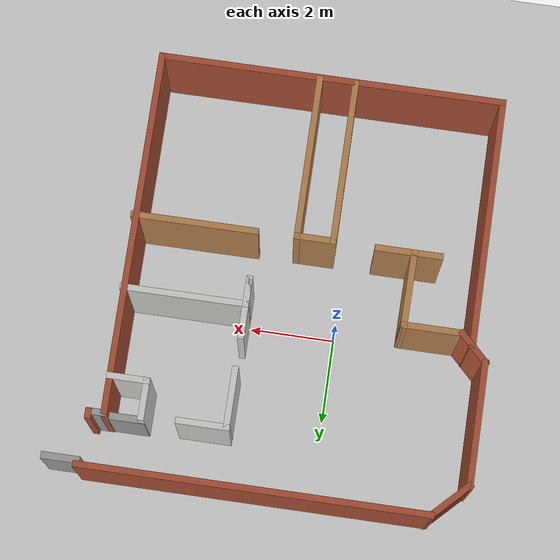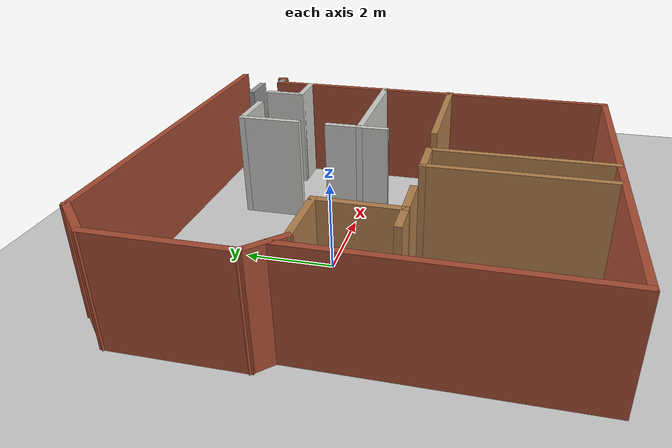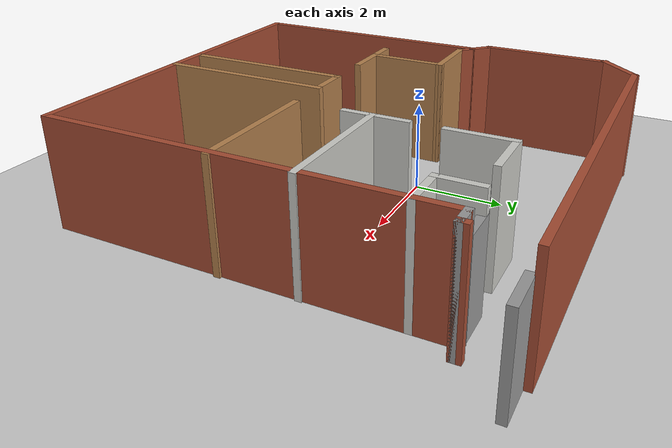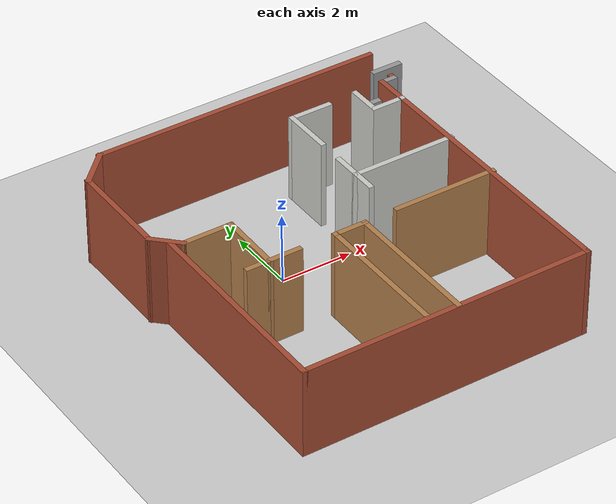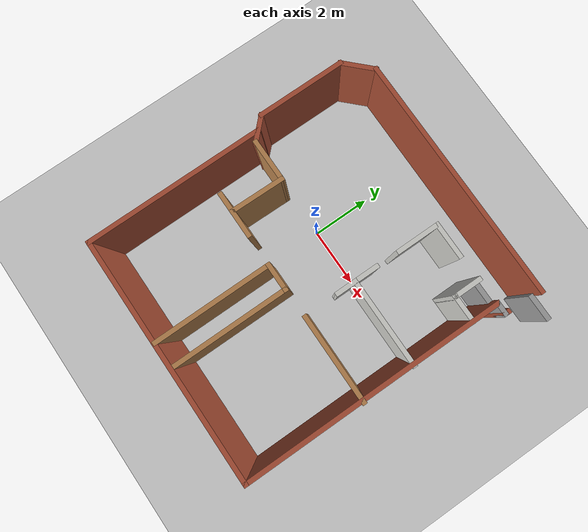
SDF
<sdf version="1.7">
 <world name="default">
  <light name="sun" type="directional">
   <pose>0 0 10 0 -0 0</pose>
   <diffuse>0.8 0.8 0.8 1</diffuse>
   <specular>0.2 0.2 0.2 1</specular>
   <attenuation>
    <range>1000</range>
    <constant>0.9</constant>
    <linear>0.01</linear>
    <quadratic>0.001</quadratic>
   </attenuation>
   <direction>-0.5 0.1 -0.9</direction>
   <spot><inner_angle>0</inner_angle><outer_angle>0</outer_angle><falloff>0</falloff></spot>
  </light>
  <model name="ground_plane">
   <static>1</static>
   <link name="link">
    <collision name="collision">
     <geometry><plane><normal>0 0 1</normal><size>100 100</size></plane></geometry>
     <surface><friction><ode><mu>100</mu><mu2>50</mu2></ode></friction></surface>
    </collision>
    <visual name="visual">
     <cast_shadows>0</cast_shadows>
     <geometry><plane><normal>0 0 1</normal><size>100 100</size></plane></geometry>
     <material>
      <script><uri>file://media/materials/scripts/gazebo.material</uri><name>Gazebo/Grey</name></script>
     </material>
    </visual>
   </link>
  </model>
  <gravity>0 0 -9.8</gravity>
  <magnetic_field>6e-06 2.3e-05 -4.2e-05</magnetic_field>
  <atmosphere type="adiabatic"/>
  <physics type="ode">
   <max_step_size>0.001</max_step_size>
   <real_time_factor>1</real_time_factor>
   <real_time_update_rate>1000</real_time_update_rate>
  </physics>
  <scene><ambient>0.4 0.4 0.4 1</ambient><background>0.7 0.7 0.7 1</background><shadows>1</shadows></scene>
  <audio><device>default</device></audio>
  <spherical_coordinates>
   <surface_model>EARTH_WGS84</surface_model>
   <latitude_deg>0</latitude_deg>
   <longitude_deg>0</longitude_deg>
   <elevation>0</elevation>
   <heading_deg>0</heading_deg>
  </spherical_coordinates>
  <model name="belmontGhar">
   <link name="Door_0">
    <pose>4.88717 4.75259 0 0 -0 0</pose>
    <visual name="Door_0_Visual">
     <pose>0 0 1 0 -0 0</pose>
     <geometry><box><size>0.9 0.17 2</size></box></geometry>
     <material>
      <script><uri>file://media/materials/scripts/gazebo.material</uri><name>Gazebo/Grey</name></script>
      <shader type="pixel"/>
     </material>
    </visual>
    <collision name="Door_0_Collision">
     <pose>0 0 1 0 -0 0</pose>
     <geometry><box><size>0.9 0.17 2</size></box></geometry>
     <surface>
      <friction>
       <ode><mu>1</mu><mu2>1</mu2><fdir1>0 0 0</fdir1><slip1>0</slip1><slip2>0</slip2></ode>
       <torsional>
        <coefficient>1</coefficient>
        <patch_radius>0</patch_radius>
        <surface_radius>0</surface_radius>
        <use_patch_radius>1</use_patch_radius>
        <ode><slip>0</slip></ode>
       </torsional>
      </friction>
      <bounce><restitution_coefficient>0</restitution_coefficient><threshold>1e+06</threshold></bounce>
      <contact>
       <collide_without_contact>0</collide_without_contact>
       <collide_without_contact_bitmask>1</collide_without_contact_bitmask>
       <collide_bitmask>1</collide_bitmask>
       <ode>
        <soft_cfm>0</soft_cfm>
        <soft_erp>0.2</soft_erp>
        <kp>1e+13</kp>
        <kd>1</kd>
        <max_vel>0.01</max_vel>
        <min_depth>0</min_depth>
       </ode>
       <bullet>
        <split_impulse>1</split_impulse>
        <split_impulse_penetration_threshold>-0.01</split_impulse_penetration_threshold>
        <soft_cfm>0</soft_cfm>
        <soft_erp>0.2</soft_erp>
        <kp>1e+13</kp>
        <kd>1</kd>
       </bullet>
      </contact>
     </surface>
    </collision>
   </link>
   <link name="Door_6">
    <pose>3.55796 3.64174 0 0 -0 0</pose>
    <visual name="Door_6_Visual">
     <pose>0 0 1 0 -0 0</pose>
     <geometry><box><size>0.9 0.17 2</size></box></geometry>
     <material>
      <script><uri>file://media/materials/scripts/gazebo.material</uri><name>Gazebo/Grey</name></script>
      <shader type="pixel"/>
     </material>
    </visual>
    <collision name="Door_6_Collision">
     <pose>0 0 1 0 -0 0</pose>
     <geometry><box><size>0.9 0.17 2</size></box></geometry>
     <surface>
      <friction>
       <ode><mu>1</mu><mu2>1</mu2><fdir1>0 0 0</fdir1><slip1>0</slip1><slip2>0</slip2></ode>
       <torsional>
        <coefficient>1</coefficient>
        <patch_radius>0</patch_radius>
        <surface_radius>0</surface_radius>
        <use_patch_radius>1</use_patch_radius>
        <ode><slip>0</slip></ode>
       </torsional>
      </friction>
      <bounce><restitution_coefficient>0</restitution_coefficient><threshold>1e+06</threshold></bounce>
      <contact>
       <collide_without_contact>0</collide_without_contact>
       <collide_without_contact_bitmask>1</collide_without_contact_bitmask>
       <collide_bitmask>1</collide_bitmask>
       <ode>
        <soft_cfm>0</soft_cfm>
        <soft_erp>0.2</soft_erp>
        <kp>1e+13</kp>
        <kd>1</kd>
        <max_vel>0.01</max_vel>
        <min_depth>0</min_depth>
       </ode>
       <bullet>
        <split_impulse>1</split_impulse>
        <split_impulse_penetration_threshold>-0.01</split_impulse_penetration_threshold>
        <soft_cfm>0</soft_cfm>
        <soft_erp>0.2</soft_erp>
        <kp>1e+13</kp>
        <kd>1</kd>
       </bullet>
      </contact>
     </surface>
    </collision>
   </link>
   <link name="Wall_0">
    <pose>0.404442 4.9024 0 0 -0 3.14159</pose>
    <visual name="Wall_0_Visual">
     <pose>0 0 1.25 0 -0 0</pose>
     <geometry><box><size>8.25 0.15 2.5</size></box></geometry>
     <material>
      <script><uri>file://media/materials/scripts/gazebo.material</uri><name>Gazebo/Bricks</name></script>
      <ambient>1 1 1 1</ambient>
      <shader type="pixel"/>
     </material>
     <meta><layer>0</layer></meta>
    </visual>
    <collision name="Wall_0_Collision">
     <pose>0 0 1.25 0 -0 0</pose>
     <geometry><box><size>8.25 0.15 2.5</size></box></geometry>
     <surface>
      <friction>
       <ode><mu>1</mu><mu2>1</mu2><fdir1>0 0 0</fdir1><slip1>0</slip1><slip2>0</slip2></ode>
       <torsional>
        <coefficient>1</coefficient>
        <patch_radius>0</patch_radius>
        <surface_radius>0</surface_radius>
        <use_patch_radius>1</use_patch_radius>
        <ode><slip>0</slip></ode>
       </torsional>
      </friction>
      <bounce><restitution_coefficient>0</restitution_coefficient><threshold>1e+06</threshold></bounce>
      <contact>
       <collide_without_contact>0</collide_without_contact>
       <collide_without_contact_bitmask>1</collide_without_contact_bitmask>
       <collide_bitmask>1</collide_bitmask>
       <ode>
        <soft_cfm>0</soft_cfm>
        <soft_erp>0.2</soft_erp>
        <kp>1e+13</kp>
        <kd>1</kd>
        <max_vel>0.01</max_vel>
        <min_depth>0</min_depth>
       </ode>
       <bullet>
        <split_impulse>1</split_impulse>
        <split_impulse_penetration_threshold>-0.01</split_impulse_penetration_threshold>
        <soft_cfm>0</soft_cfm>
        <soft_erp>0.2</soft_erp>
        <kp>1e+13</kp>
        <kd>1</kd>
       </bullet>
      </contact>
     </surface>
    </collision>
   </link>
   <link name="Wall_1">
    <pose>-4.03447 4.5135 0 0 0 -2.35619</pose>
    <visual name="Wall_1_Visual">
     <pose>0 0 1.25 0 -0 0</pose>
     <geometry><box><size>1.25 0.15 2.5</size></box></geometry>
     <material>
      <script><uri>file://media/materials/scripts/gazebo.material</uri><name>Gazebo/Bricks</name></script>
      <ambient>1 1 1 1</ambient>
      <shader type="pixel"/>
     </material>
     <meta><layer>0</layer></meta>
    </visual>
    <collision name="Wall_1_Collision">
     <pose>0 0 1.25 0 -0 0</pose>
     <geometry><box><size>1.25 0.15 2.5</size></box></geometry>
     <surface>
      <friction>
       <ode><mu>1</mu><mu2>1</mu2><fdir1>0 0 0</fdir1><slip1>0</slip1><slip2>0</slip2></ode>
       <torsional>
        <coefficient>1</coefficient>
        <patch_radius>0</patch_radius>
        <surface_radius>0</surface_radius>
        <use_patch_radius>1</use_patch_radius>
        <ode><slip>0</slip></ode>
       </torsional>
      </friction>
      <bounce><restitution_coefficient>0</restitution_coefficient><threshold>1e+06</threshold></bounce>
      <contact>
       <collide_without_contact>0</collide_without_contact>
       <collide_without_contact_bitmask>1</collide_without_contact_bitmask>
       <collide_bitmask>1</collide_bitmask>
       <ode>
        <soft_cfm>0</soft_cfm>
        <soft_erp>0.2</soft_erp>
        <kp>1e+13</kp>
        <kd>1</kd>
        <max_vel>0.01</max_vel>
        <min_depth>0</min_depth>
       </ode>
       <bullet>
        <split_impulse>1</split_impulse>
        <split_impulse_penetration_threshold>-0.01</split_impulse_penetration_threshold>
        <soft_cfm>0</soft_cfm>
        <soft_erp>0.2</soft_erp>
        <kp>1e+13</kp>
        <kd>1</kd>
       </bullet>
      </contact>
     </surface>
    </collision>
   </link>
   <link name="Wall_13">
    <pose>-4.08757 -2.00847 0 0 0 -1.5708</pose>
    <visual name="Wall_13_Visual">
     <pose>0 0 1.25 0 -0 0</pose>
     <geometry><box><size>6 0.15 2.5</size></box></geometry>
     <material>
      <script><uri>file://media/materials/scripts/gazebo.material</uri><name>Gazebo/Bricks</name></script>
      <ambient>1 1 1 1</ambient>
      <shader type="pixel"/>
     </material>
     <meta><layer>0</layer></meta>
    </visual>
    <collision name="Wall_13_Collision">
     <pose>0 0 1.25 0 -0 0</pose>
     <geometry><box><size>6 0.15 2.5</size></box></geometry>
     <surface>
      <friction>
       <ode><mu>1</mu><mu2>1</mu2><fdir1>0 0 0</fdir1><slip1>0</slip1><slip2>0</slip2></ode>
       <torsional>
        <coefficient>1</coefficient>
        <patch_radius>0</patch_radius>
        <surface_radius>0</surface_radius>
        <use_patch_radius>1</use_patch_radius>
        <ode><slip>0</slip></ode>
       </torsional>
      </friction>
      <bounce><restitution_coefficient>0</restitution_coefficient><threshold>1e+06</threshold></bounce>
      <contact>
       <collide_without_contact>0</collide_without_contact>
       <collide_without_contact_bitmask>1</collide_without_contact_bitmask>
       <collide_bitmask>1</collide_bitmask>
       <ode>
        <soft_cfm>0</soft_cfm>
        <soft_erp>0.2</soft_erp>
        <kp>1e+13</kp>
        <kd>1</kd>
        <max_vel>0.01</max_vel>
        <min_depth>0</min_depth>
       </ode>
       <bullet>
        <split_impulse>1</split_impulse>
        <split_impulse_penetration_threshold>-0.01</split_impulse_penetration_threshold>
        <soft_cfm>0</soft_cfm>
        <soft_erp>0.2</soft_erp>
        <kp>1e+13</kp>
        <kd>1</kd>
       </bullet>
      </contact>
     </surface>
    </collision>
   </link>
   <link name="Wall_14">
    <pose>-0.037571 -4.93347 0 0 -0 0</pose>
    <visual name="Wall_14_Visual">
     <pose>0 0 1.25 0 -0 0</pose>
     <geometry><box><size>8.25 0.15 2.5</size></box></geometry>
     <material>
      <script><uri>file://media/materials/scripts/gazebo.material</uri><name>Gazebo/Bricks</name></script>
      <ambient>1 1 1 1</ambient>
      <shader type="pixel"/>
     </material>
     <meta><layer>0</layer></meta>
    </visual>
    <collision name="Wall_14_Collision">
     <pose>0 0 1.25 0 -0 0</pose>
     <geometry><box><size>8.25 0.15 2.5</size></box></geometry>
     <surface>
      <friction>
       <ode><mu>1</mu><mu2>1</mu2><fdir1>0 0 0</fdir1><slip1>0</slip1><slip2>0</slip2></ode>
       <torsional>
        <coefficient>1</coefficient>
        <patch_radius>0</patch_radius>
        <surface_radius>0</surface_radius>
        <use_patch_radius>1</use_patch_radius>
        <ode><slip>0</slip></ode>
       </torsional>
      </friction>
      <bounce><restitution_coefficient>0</restitution_coefficient><threshold>1e+06</threshold></bounce>
      <contact>
       <collide_without_contact>0</collide_without_contact>
       <collide_without_contact_bitmask>1</collide_without_contact_bitmask>
       <collide_bitmask>1</collide_bitmask>
       <ode>
        <soft_cfm>0</soft_cfm>
        <soft_erp>0.2</soft_erp>
        <kp>1e+13</kp>
        <kd>1</kd>
        <max_vel>0.01</max_vel>
        <min_depth>0</min_depth>
       </ode>
       <bullet>
        <split_impulse>1</split_impulse>
        <split_impulse_penetration_threshold>-0.01</split_impulse_penetration_threshold>
        <soft_cfm>0</soft_cfm>
        <soft_erp>0.2</soft_erp>
        <kp>1e+13</kp>
        <kd>1</kd>
       </bullet>
      </contact>
     </surface>
    </collision>
   </link>
   <link name="Wall_15">
    <pose>4.01243 -0.63347 0 0 -0 1.5708</pose>
    <visual name="Wall_15_Visual">
     <pose>0 0 1.25 0 -0 0</pose>
     <geometry><box><size>8.75 0.15 2.5</size></box></geometry>
     <material>
      <script><uri>file://media/materials/scripts/gazebo.material</uri><name>Gazebo/Bricks</name></script>
      <ambient>1 1 1 1</ambient>
      <shader type="pixel"/>
     </material>
     <meta><layer>0</layer></meta>
    </visual>
    <collision name="Wall_15_Collision">
     <pose>0 0 1.25 0 -0 0</pose>
     <geometry><box><size>8.75 0.15 2.5</size></box></geometry>
     <surface>
      <friction>
       <ode><mu>1</mu><mu2>1</mu2><fdir1>0 0 0</fdir1><slip1>0</slip1><slip2>0</slip2></ode>
       <torsional>
        <coefficient>1</coefficient>
        <patch_radius>0</patch_radius>
        <surface_radius>0</surface_radius>
        <use_patch_radius>1</use_patch_radius>
        <ode><slip>0</slip></ode>
       </torsional>
      </friction>
      <bounce><restitution_coefficient>0</restitution_coefficient><threshold>1e+06</threshold></bounce>
      <contact>
       <collide_without_contact>0</collide_without_contact>
       <collide_without_contact_bitmask>1</collide_without_contact_bitmask>
       <collide_bitmask>1</collide_bitmask>
       <ode>
        <soft_cfm>0</soft_cfm>
        <soft_erp>0.2</soft_erp>
        <kp>1e+13</kp>
        <kd>1</kd>
        <max_vel>0.01</max_vel>
        <min_depth>0</min_depth>
       </ode>
       <bullet>
        <split_impulse>1</split_impulse>
        <split_impulse_penetration_threshold>-0.01</split_impulse_penetration_threshold>
        <soft_cfm>0</soft_cfm>
        <soft_erp>0.2</soft_erp>
        <kp>1e+13</kp>
        <kd>1</kd>
       </bullet>
      </contact>
     </surface>
    </collision>
   </link>
   <link name="Wall_16">
    <pose>4.18743 3.66653 0 0 -0 0</pose>
    <visual name="Wall_16_Visual">
     <pose>0 0 1.25 0 -0 0</pose>
     <geometry><box><size>0.5 0.15 2.5</size></box></geometry>
     <material>
      <script><uri>file://media/materials/scripts/gazebo.material</uri><name>Gazebo/Grey</name></script>
      <ambient>1 1 1 1</ambient>
      <shader type="pixel"/>
     </material>
     <meta><layer>0</layer></meta>
    </visual>
    <collision name="Wall_16_Collision">
     <pose>0 0 1.25 0 -0 0</pose>
     <geometry><box><size>0.5 0.15 2.5</size></box></geometry>
     <surface>
      <friction>
       <ode><mu>1</mu><mu2>1</mu2><fdir1>0 0 0</fdir1><slip1>0</slip1><slip2>0</slip2></ode>
       <torsional>
        <coefficient>1</coefficient>
        <patch_radius>0</patch_radius>
        <surface_radius>0</surface_radius>
        <use_patch_radius>1</use_patch_radius>
        <ode><slip>0</slip></ode>
       </torsional>
      </friction>
      <bounce><restitution_coefficient>0</restitution_coefficient><threshold>1e+06</threshold></bounce>
      <contact>
       <collide_without_contact>0</collide_without_contact>
       <collide_without_contact_bitmask>1</collide_without_contact_bitmask>
       <collide_bitmask>1</collide_bitmask>
       <ode>
        <soft_cfm>0</soft_cfm>
        <soft_erp>0.2</soft_erp>
        <kp>1e+13</kp>
        <kd>1</kd>
        <max_vel>0.01</max_vel>
        <min_depth>0</min_depth>
       </ode>
       <bullet>
        <split_impulse>1</split_impulse>
        <split_impulse_penetration_threshold>-0.01</split_impulse_penetration_threshold>
        <soft_cfm>0</soft_cfm>
        <soft_erp>0.2</soft_erp>
        <kp>1e+13</kp>
        <kd>1</kd>
       </bullet>
      </contact>
     </surface>
    </collision>
   </link>
   <link name="Wall_17">
    <pose>4.36243 3.71653 0 0 -0 1.5708</pose>
    <visual name="Wall_17_Visual">
     <pose>0 0 1.25 0 -0 0</pose>
     <geometry><box><size>0.25 0.15 2.5</size></box></geometry>
     <material>
      <script><uri>file://media/materials/scripts/gazebo.material</uri><name>Gazebo/Bricks</name></script>
      <ambient>1 1 1 1</ambient>
      <shader type="pixel"/>
     </material>
     <meta><layer>0</layer></meta>
    </visual>
    <collision name="Wall_17_Collision">
     <pose>0 0 1.25 0 -0 0</pose>
     <geometry><box><size>0.25 0.15 2.5</size></box></geometry>
     <surface>
      <friction>
       <ode><mu>1</mu><mu2>1</mu2><fdir1>0 0 0</fdir1><slip1>0</slip1><slip2>0</slip2></ode>
       <torsional>
        <coefficient>1</coefficient>
        <patch_radius>0</patch_radius>
        <surface_radius>0</surface_radius>
        <use_patch_radius>1</use_patch_radius>
        <ode><slip>0</slip></ode>
       </torsional>
      </friction>
      <bounce><restitution_coefficient>0</restitution_coefficient><threshold>1e+06</threshold></bounce>
      <contact>
       <collide_without_contact>0</collide_without_contact>
       <collide_without_contact_bitmask>1</collide_without_contact_bitmask>
       <collide_bitmask>1</collide_bitmask>
       <ode>
        <soft_cfm>0</soft_cfm>
        <soft_erp>0.2</soft_erp>
        <kp>1e+13</kp>
        <kd>1</kd>
        <max_vel>0.01</max_vel>
        <min_depth>0</min_depth>
       </ode>
       <bullet>
        <split_impulse>1</split_impulse>
        <split_impulse_penetration_threshold>-0.01</split_impulse_penetration_threshold>
        <soft_cfm>0</soft_cfm>
        <soft_erp>0.2</soft_erp>
        <kp>1e+13</kp>
        <kd>1</kd>
       </bullet>
      </contact>
     </surface>
    </collision>
   </link>
   <link name="Wall_19">
    <pose>2.64183 -1.03065 0 0 -0 3.14159</pose>
    <visual name="Wall_19_Visual">
     <pose>0 0 1.25 0 -0 0</pose>
     <geometry><box><size>3 0.15 2.5</size></box></geometry>
     <material>
      <script><uri>file://media/materials/scripts/gazebo.material</uri><name>Gazebo/Wood</name></script>
      <ambient>1 1 1 1</ambient>
      <shader type="pixel"/>
     </material>
     <meta><layer>0</layer></meta>
    </visual>
    <collision name="Wall_19_Collision">
     <pose>0 0 1.25 0 -0 0</pose>
     <geometry><box><size>3 0.15 2.5</size></box></geometry>
     <surface>
      <friction>
       <ode><mu>1</mu><mu2>1</mu2><fdir1>0 0 0</fdir1><slip1>0</slip1><slip2>0</slip2></ode>
       <torsional>
        <coefficient>1</coefficient>
        <patch_radius>0</patch_radius>
        <surface_radius>0</surface_radius>
        <use_patch_radius>1</use_patch_radius>
        <ode><slip>0</slip></ode>
       </torsional>
      </friction>
      <bounce><restitution_coefficient>0</restitution_coefficient><threshold>1e+06</threshold></bounce>
      <contact>
       <collide_without_contact>0</collide_without_contact>
       <collide_without_contact_bitmask>1</collide_without_contact_bitmask>
       <collide_bitmask>1</collide_bitmask>
       <ode>
        <soft_cfm>0</soft_cfm>
        <soft_erp>0.2</soft_erp>
        <kp>1e+13</kp>
        <kd>1</kd>
        <max_vel>0.01</max_vel>
        <min_depth>0</min_depth>
       </ode>
       <bullet>
        <split_impulse>1</split_impulse>
        <split_impulse_penetration_threshold>-0.01</split_impulse_penetration_threshold>
        <soft_cfm>0</soft_cfm>
        <soft_erp>0.2</soft_erp>
        <kp>1e+13</kp>
        <kd>1</kd>
       </bullet>
      </contact>
     </surface>
    </collision>
   </link>
   <link name="Wall_2">
    <pose>-4.42338 2.69959 0 0 0 -1.5708</pose>
    <visual name="Wall_2_Visual">
     <pose>0 0 1.25 0 -0 0</pose>
     <geometry><box><size>3 0.15 2.5</size></box></geometry>
     <material>
      <script><uri>file://media/materials/scripts/gazebo.material</uri><name>Gazebo/Bricks</name></script>
      <ambient>1 1 1 1</ambient>
      <shader type="pixel"/>
     </material>
     <meta><layer>0</layer></meta>
    </visual>
    <collision name="Wall_2_Collision">
     <pose>0 0 1.25 0 -0 0</pose>
     <geometry><box><size>3 0.15 2.5</size></box></geometry>
     <surface>
      <friction>
       <ode><mu>1</mu><mu2>1</mu2><fdir1>0 0 0</fdir1><slip1>0</slip1><slip2>0</slip2></ode>
       <torsional>
        <coefficient>1</coefficient>
        <patch_radius>0</patch_radius>
        <surface_radius>0</surface_radius>
        <use_patch_radius>1</use_patch_radius>
        <ode><slip>0</slip></ode>
       </torsional>
      </friction>
      <bounce><restitution_coefficient>0</restitution_coefficient><threshold>1e+06</threshold></bounce>
      <contact>
       <collide_without_contact>0</collide_without_contact>
       <collide_without_contact_bitmask>1</collide_without_contact_bitmask>
       <collide_bitmask>1</collide_bitmask>
       <ode>
        <soft_cfm>0</soft_cfm>
        <soft_erp>0.2</soft_erp>
        <kp>1e+13</kp>
        <kd>1</kd>
        <max_vel>0.01</max_vel>
        <min_depth>0</min_depth>
       </ode>
       <bullet>
        <split_impulse>1</split_impulse>
        <split_impulse_penetration_threshold>-0.01</split_impulse_penetration_threshold>
        <soft_cfm>0</soft_cfm>
        <soft_erp>0.2</soft_erp>
        <kp>1e+13</kp>
        <kd>1</kd>
       </bullet>
      </contact>
     </surface>
    </collision>
   </link>
   <link name="Wall_21">
    <pose>-0.174717 -1.05378 0 0 -0 3.14159</pose>
    <visual name="Wall_21_Visual">
     <pose>0 0 1.25 0 -0 0</pose>
     <geometry><box><size>1 0.15 2.5</size></box></geometry>
     <material>
      <script><uri>file://media/materials/scripts/gazebo.material</uri><name>Gazebo/Wood</name></script>
      <ambient>1 1 1 1</ambient>
      <shader type="pixel"/>
     </material>
     <meta><layer>0</layer></meta>
    </visual>
    <collision name="Wall_21_Collision">
     <pose>0 0 1.25 0 -0 0</pose>
     <geometry><box><size>1 0.15 2.5</size></box></geometry>
     <surface>
      <friction>
       <ode><mu>1</mu><mu2>1</mu2><fdir1>0 0 0</fdir1><slip1>0</slip1><slip2>0</slip2></ode>
       <torsional>
        <coefficient>1</coefficient>
        <patch_radius>0</patch_radius>
        <surface_radius>0</surface_radius>
        <use_patch_radius>1</use_patch_radius>
        <ode><slip>0</slip></ode>
       </torsional>
      </friction>
      <bounce><restitution_coefficient>0</restitution_coefficient><threshold>1e+06</threshold></bounce>
      <contact>
       <collide_without_contact>0</collide_without_contact>
       <collide_without_contact_bitmask>1</collide_without_contact_bitmask>
       <collide_bitmask>1</collide_bitmask>
       <ode>
        <soft_cfm>0</soft_cfm>
        <soft_erp>0.2</soft_erp>
        <kp>1e+13</kp>
        <kd>1</kd>
        <max_vel>0.01</max_vel>
        <min_depth>0</min_depth>
       </ode>
       <bullet>
        <split_impulse>1</split_impulse>
        <split_impulse_penetration_threshold>-0.01</split_impulse_penetration_threshold>
        <soft_cfm>0</soft_cfm>
        <soft_erp>0.2</soft_erp>
        <kp>1e+13</kp>
        <kd>1</kd>
       </bullet>
      </contact>
     </surface>
    </collision>
   </link>
   <link name="Wall_23">
    <pose>0.250283 -2.97878 0 0 0 -1.5708</pose>
    <visual name="Wall_23_Visual">
     <pose>0 0 1.25 0 -0 0</pose>
     <geometry><box><size>4 0.15 2.5</size></box></geometry>
     <material>
      <script><uri>file://media/materials/scripts/gazebo.material</uri><name>Gazebo/Wood</name></script>
      <ambient>1 1 1 1</ambient>
      <shader type="pixel"/>
     </material>
     <meta><layer>0</layer></meta>
    </visual>
    <collision name="Wall_23_Collision">
     <pose>0 0 1.25 0 -0 0</pose>
     <geometry><box><size>4 0.15 2.5</size></box></geometry>
     <surface>
      <friction>
       <ode><mu>1</mu><mu2>1</mu2><fdir1>0 0 0</fdir1><slip1>0</slip1><slip2>0</slip2></ode>
       <torsional>
        <coefficient>1</coefficient>
        <patch_radius>0</patch_radius>
        <surface_radius>0</surface_radius>
        <use_patch_radius>1</use_patch_radius>
        <ode><slip>0</slip></ode>
       </torsional>
      </friction>
      <bounce><restitution_coefficient>0</restitution_coefficient><threshold>1e+06</threshold></bounce>
      <contact>
       <collide_without_contact>0</collide_without_contact>
       <collide_without_contact_bitmask>1</collide_without_contact_bitmask>
       <collide_bitmask>1</collide_bitmask>
       <ode>
        <soft_cfm>0</soft_cfm>
        <soft_erp>0.2</soft_erp>
        <kp>1e+13</kp>
        <kd>1</kd>
        <max_vel>0.01</max_vel>
        <min_depth>0</min_depth>
       </ode>
       <bullet>
        <split_impulse>1</split_impulse>
        <split_impulse_penetration_threshold>-0.01</split_impulse_penetration_threshold>
        <soft_cfm>0</soft_cfm>
        <soft_erp>0.2</soft_erp>
        <kp>1e+13</kp>
        <kd>1</kd>
       </bullet>
      </contact>
     </surface>
    </collision>
   </link>
   <link name="Wall_25">
    <pose>-0.599717 -2.97878 0 0 0 -1.5708</pose>
    <visual name="Wall_25_Visual">
     <pose>0 0 1.25 0 -0 0</pose>
     <geometry><box><size>4 0.15 2.5</size></box></geometry>
     <material>
      <script><uri>file://media/materials/scripts/gazebo.material</uri><name>Gazebo/Wood</name></script>
      <ambient>1 1 1 1</ambient>
      <shader type="pixel"/>
     </material>
     <meta><layer>0</layer></meta>
    </visual>
    <collision name="Wall_25_Collision">
     <pose>0 0 1.25 0 -0 0</pose>
     <geometry><box><size>4 0.15 2.5</size></box></geometry>
     <surface>
      <friction>
       <ode><mu>1</mu><mu2>1</mu2><fdir1>0 0 0</fdir1><slip1>0</slip1><slip2>0</slip2></ode>
       <torsional>
        <coefficient>1</coefficient>
        <patch_radius>0</patch_radius>
        <surface_radius>0</surface_radius>
        <use_patch_radius>1</use_patch_radius>
        <ode><slip>0</slip></ode>
       </torsional>
      </friction>
      <bounce><restitution_coefficient>0</restitution_coefficient><threshold>1e+06</threshold></bounce>
      <contact>
       <collide_without_contact>0</collide_without_contact>
       <collide_without_contact_bitmask>1</collide_without_contact_bitmask>
       <collide_bitmask>1</collide_bitmask>
       <ode>
        <soft_cfm>0</soft_cfm>
        <soft_erp>0.2</soft_erp>
        <kp>1e+13</kp>
        <kd>1</kd>
        <max_vel>0.01</max_vel>
        <min_depth>0</min_depth>
       </ode>
       <bullet>
        <split_impulse>1</split_impulse>
        <split_impulse_penetration_threshold>-0.01</split_impulse_penetration_threshold>
        <soft_cfm>0</soft_cfm>
        <soft_erp>0.2</soft_erp>
        <kp>1e+13</kp>
        <kd>1</kd>
       </bullet>
      </contact>
     </surface>
    </collision>
   </link>
   <link name="Wall_27">
    <pose>2.6187 0.70415 0 0 -0 3.14159</pose>
    <visual name="Wall_27_Visual">
     <pose>0 0 1.25 0 -0 0</pose>
     <geometry><box><size>3 0.15 2.5</size></box></geometry>
     <material>
      <script><uri>file://media/materials/scripts/gazebo.material</uri><name>Gazebo/CeilingTiled</name></script>
      <ambient>1 1 1 1</ambient>
      <shader type="pixel"/>
     </material>
     <meta><layer>0</layer></meta>
    </visual>
    <collision name="Wall_27_Collision">
     <pose>0 0 1.25 0 -0 0</pose>
     <geometry><box><size>3 0.15 2.5</size></box></geometry>
     <surface>
      <friction>
       <ode><mu>1</mu><mu2>1</mu2><fdir1>0 0 0</fdir1><slip1>0</slip1><slip2>0</slip2></ode>
       <torsional>
        <coefficient>1</coefficient>
        <patch_radius>0</patch_radius>
        <surface_radius>0</surface_radius>
        <use_patch_radius>1</use_patch_radius>
        <ode><slip>0</slip></ode>
       </torsional>
      </friction>
      <bounce><restitution_coefficient>0</restitution_coefficient><threshold>1e+06</threshold></bounce>
      <contact>
       <collide_without_contact>0</collide_without_contact>
       <collide_without_contact_bitmask>1</collide_without_contact_bitmask>
       <collide_bitmask>1</collide_bitmask>
       <ode>
        <soft_cfm>0</soft_cfm>
        <soft_erp>0.2</soft_erp>
        <kp>1e+13</kp>
        <kd>1</kd>
        <max_vel>0.01</max_vel>
        <min_depth>0</min_depth>
       </ode>
       <bullet>
        <split_impulse>1</split_impulse>
        <split_impulse_penetration_threshold>-0.01</split_impulse_penetration_threshold>
        <soft_cfm>0</soft_cfm>
        <soft_erp>0.2</soft_erp>
        <kp>1e+13</kp>
        <kd>1</kd>
       </bullet>
      </contact>
     </surface>
    </collision>
   </link>
   <link name="Wall_28">
    <pose>1.1937 0.40415 0 0 0 -1.5708</pose>
    <visual name="Wall_28_Visual">
     <pose>0 0 1.25 0 -0 0</pose>
     <geometry><box><size>0.75 0.15 2.5</size></box></geometry>
     <material>
      <script><uri>file://media/materials/scripts/gazebo.material</uri><name>Gazebo/CeilingTiled</name></script>
      <ambient>1 1 1 1</ambient>
      <shader type="pixel"/>
     </material>
     <meta><layer>0</layer></meta>
    </visual>
    <collision name="Wall_28_Collision">
     <pose>0 0 1.25 0 -0 0</pose>
     <geometry><box><size>0.75 0.15 2.5</size></box></geometry>
     <surface>
      <friction>
       <ode><mu>1</mu><mu2>1</mu2><fdir1>0 0 0</fdir1><slip1>0</slip1><slip2>0</slip2></ode>
       <torsional>
        <coefficient>1</coefficient>
        <patch_radius>0</patch_radius>
        <surface_radius>0</surface_radius>
        <use_patch_radius>1</use_patch_radius>
        <ode><slip>0</slip></ode>
       </torsional>
      </friction>
      <bounce><restitution_coefficient>0</restitution_coefficient><threshold>1e+06</threshold></bounce>
      <contact>
       <collide_without_contact>0</collide_without_contact>
       <collide_without_contact_bitmask>1</collide_without_contact_bitmask>
       <collide_bitmask>1</collide_bitmask>
       <ode>
        <soft_cfm>0</soft_cfm>
        <soft_erp>0.2</soft_erp>
        <kp>1e+13</kp>
        <kd>1</kd>
        <max_vel>0.01</max_vel>
        <min_depth>0</min_depth>
       </ode>
       <bullet>
        <split_impulse>1</split_impulse>
        <split_impulse_penetration_threshold>-0.01</split_impulse_penetration_threshold>
        <soft_cfm>0</soft_cfm>
        <soft_erp>0.2</soft_erp>
        <kp>1e+13</kp>
        <kd>1</kd>
       </bullet>
      </contact>
     </surface>
    </collision>
   </link>
   <link name="Wall_29">
    <pose>1.1937 0.77915 0 0 -0 1.5708</pose>
    <visual name="Wall_29_Visual">
     <pose>0 0 1.25 0 -0 0</pose>
     <geometry><box><size>1.5 0.15 2.5</size></box></geometry>
     <material>
      <script><uri>file://media/materials/scripts/gazebo.material</uri><name>Gazebo/CeilingTiled</name></script>
      <ambient>1 1 1 1</ambient>
      <shader type="pixel"/>
     </material>
     <meta><layer>0</layer></meta>
    </visual>
    <collision name="Wall_29_Collision">
     <pose>0 0 1.25 0 -0 0</pose>
     <geometry><box><size>1.5 0.15 2.5</size></box></geometry>
     <surface>
      <friction>
       <ode><mu>1</mu><mu2>1</mu2><fdir1>0 0 0</fdir1><slip1>0</slip1><slip2>0</slip2></ode>
       <torsional>
        <coefficient>1</coefficient>
        <patch_radius>0</patch_radius>
        <surface_radius>0</surface_radius>
        <use_patch_radius>1</use_patch_radius>
        <ode><slip>0</slip></ode>
       </torsional>
      </friction>
      <bounce><restitution_coefficient>0</restitution_coefficient><threshold>1e+06</threshold></bounce>
      <contact>
       <collide_without_contact>0</collide_without_contact>
       <collide_without_contact_bitmask>1</collide_without_contact_bitmask>
       <collide_bitmask>1</collide_bitmask>
       <ode>
        <soft_cfm>0</soft_cfm>
        <soft_erp>0.2</soft_erp>
        <kp>1e+13</kp>
        <kd>1</kd>
        <max_vel>0.01</max_vel>
        <min_depth>0</min_depth>
       </ode>
       <bullet>
        <split_impulse>1</split_impulse>
        <split_impulse_penetration_threshold>-0.01</split_impulse_penetration_threshold>
        <soft_cfm>0</soft_cfm>
        <soft_erp>0.2</soft_erp>
        <kp>1e+13</kp>
        <kd>1</kd>
       </bullet>
      </contact>
     </surface>
    </collision>
   </link>
   <link name="Wall_3">
    <pose>-4.12286 0.974067 0 0 0 -0.785398</pose>
    <visual name="Wall_3_Visual">
     <pose>0 0 1.25 0 -0 0</pose>
     <geometry><box><size>1 0.15 2.5</size></box></geometry>
     <material>
      <script><uri>file://media/materials/scripts/gazebo.material</uri><name>Gazebo/Bricks</name></script>
      <ambient>1 1 1 1</ambient>
      <shader type="pixel"/>
     </material>
     <meta><layer>0</layer></meta>
    </visual>
    <collision name="Wall_3_Collision">
     <pose>0 0 1.25 0 -0 0</pose>
     <geometry><box><size>1 0.15 2.5</size></box></geometry>
     <surface>
      <friction>
       <ode><mu>1</mu><mu2>1</mu2><fdir1>0 0 0</fdir1><slip1>0</slip1><slip2>0</slip2></ode>
       <torsional>
        <coefficient>1</coefficient>
        <patch_radius>0</patch_radius>
        <surface_radius>0</surface_radius>
        <use_patch_radius>1</use_patch_radius>
        <ode><slip>0</slip></ode>
       </torsional>
      </friction>
      <bounce><restitution_coefficient>0</restitution_coefficient><threshold>1e+06</threshold></bounce>
      <contact>
       <collide_without_contact>0</collide_without_contact>
       <collide_without_contact_bitmask>1</collide_without_contact_bitmask>
       <collide_bitmask>1</collide_bitmask>
       <ode>
        <soft_cfm>0</soft_cfm>
        <soft_erp>0.2</soft_erp>
        <kp>1e+13</kp>
        <kd>1</kd>
        <max_vel>0.01</max_vel>
        <min_depth>0</min_depth>
       </ode>
       <bullet>
        <split_impulse>1</split_impulse>
        <split_impulse_penetration_threshold>-0.01</split_impulse_penetration_threshold>
        <soft_cfm>0</soft_cfm>
        <soft_erp>0.2</soft_erp>
        <kp>1e+13</kp>
        <kd>1</kd>
       </bullet>
      </contact>
     </surface>
    </collision>
   </link>
   <link name="Wall_31">
    <pose>1.75891 3.59548 0 0 -0 3.14159</pose>
    <visual name="Wall_31_Visual">
     <pose>0 0 1.25 0 -0 0</pose>
     <geometry><box><size>1.25 0.15 2.5</size></box></geometry>
     <material>
      <script><uri>file://media/materials/scripts/gazebo.material</uri><name>Gazebo/CeilingTiled</name></script>
      <ambient>1 1 1 1</ambient>
      <shader type="pixel"/>
     </material>
     <meta><layer>0</layer></meta>
    </visual>
    <collision name="Wall_31_Collision">
     <pose>0 0 1.25 0 -0 0</pose>
     <geometry><box><size>1.25 0.15 2.5</size></box></geometry>
     <surface>
      <friction>
       <ode><mu>1</mu><mu2>1</mu2><fdir1>0 0 0</fdir1><slip1>0</slip1><slip2>0</slip2></ode>
       <torsional>
        <coefficient>1</coefficient>
        <patch_radius>0</patch_radius>
        <surface_radius>0</surface_radius>
        <use_patch_radius>1</use_patch_radius>
        <ode><slip>0</slip></ode>
       </torsional>
      </friction>
      <bounce><restitution_coefficient>0</restitution_coefficient><threshold>1e+06</threshold></bounce>
      <contact>
       <collide_without_contact>0</collide_without_contact>
       <collide_without_contact_bitmask>1</collide_without_contact_bitmask>
       <collide_bitmask>1</collide_bitmask>
       <ode>
        <soft_cfm>0</soft_cfm>
        <soft_erp>0.2</soft_erp>
        <kp>1e+13</kp>
        <kd>1</kd>
        <max_vel>0.01</max_vel>
        <min_depth>0</min_depth>
       </ode>
       <bullet>
        <split_impulse>1</split_impulse>
        <split_impulse_penetration_threshold>-0.01</split_impulse_penetration_threshold>
        <soft_cfm>0</soft_cfm>
        <soft_erp>0.2</soft_erp>
        <kp>1e+13</kp>
        <kd>1</kd>
       </bullet>
      </contact>
     </surface>
    </collision>
   </link>
   <link name="Wall_32">
    <pose>1.20891 2.92048 0 0 0 -1.5708</pose>
    <visual name="Wall_32_Visual">
     <pose>0 0 1.25 0 -0 0</pose>
     <geometry><box><size>1.5 0.15 2.5</size></box></geometry>
     <material>
      <script><uri>file://media/materials/scripts/gazebo.material</uri><name>Gazebo/CeilingTiled</name></script>
      <ambient>1 1 1 1</ambient>
      <shader type="pixel"/>
     </material>
     <meta><layer>0</layer></meta>
    </visual>
    <collision name="Wall_32_Collision">
     <pose>0 0 1.25 0 -0 0</pose>
     <geometry><box><size>1.5 0.15 2.5</size></box></geometry>
     <surface>
      <friction>
       <ode><mu>1</mu><mu2>1</mu2><fdir1>0 0 0</fdir1><slip1>0</slip1><slip2>0</slip2></ode>
       <torsional>
        <coefficient>1</coefficient>
        <patch_radius>0</patch_radius>
        <surface_radius>0</surface_radius>
        <use_patch_radius>1</use_patch_radius>
        <ode><slip>0</slip></ode>
       </torsional>
      </friction>
      <bounce><restitution_coefficient>0</restitution_coefficient><threshold>1e+06</threshold></bounce>
      <contact>
       <collide_without_contact>0</collide_without_contact>
       <collide_without_contact_bitmask>1</collide_without_contact_bitmask>
       <collide_bitmask>1</collide_bitmask>
       <ode>
        <soft_cfm>0</soft_cfm>
        <soft_erp>0.2</soft_erp>
        <kp>1e+13</kp>
        <kd>1</kd>
        <max_vel>0.01</max_vel>
        <min_depth>0</min_depth>
       </ode>
       <bullet>
        <split_impulse>1</split_impulse>
        <split_impulse_penetration_threshold>-0.01</split_impulse_penetration_threshold>
        <soft_cfm>0</soft_cfm>
        <soft_erp>0.2</soft_erp>
        <kp>1e+13</kp>
        <kd>1</kd>
       </bullet>
      </contact>
     </surface>
    </collision>
   </link>
   <link name="Wall_34">
    <pose>3.16474 3.21674 0 0 0 -1.5708</pose>
    <visual name="Wall_34_Visual">
     <pose>0 0 1.25 0 -0 0</pose>
     <geometry><box><size>1 0.15 2.5</size></box></geometry>
     <material>
      <script><uri>file://media/materials/scripts/gazebo.material</uri><name>Gazebo/CeilingTiled</name></script>
      <ambient>1 1 1 1</ambient>
      <shader type="pixel"/>
     </material>
     <meta><layer>0</layer></meta>
    </visual>
    <collision name="Wall_34_Collision">
     <pose>0 0 1.25 0 -0 0</pose>
     <geometry><box><size>1 0.15 2.5</size></box></geometry>
     <surface>
      <friction>
       <ode><mu>1</mu><mu2>1</mu2><fdir1>0 0 0</fdir1><slip1>0</slip1><slip2>0</slip2></ode>
       <torsional>
        <coefficient>1</coefficient>
        <patch_radius>0</patch_radius>
        <surface_radius>0</surface_radius>
        <use_patch_radius>1</use_patch_radius>
        <ode><slip>0</slip></ode>
       </torsional>
      </friction>
      <bounce><restitution_coefficient>0</restitution_coefficient><threshold>1e+06</threshold></bounce>
      <contact>
       <collide_without_contact>0</collide_without_contact>
       <collide_without_contact_bitmask>1</collide_without_contact_bitmask>
       <collide_bitmask>1</collide_bitmask>
       <ode>
        <soft_cfm>0</soft_cfm>
        <soft_erp>0.2</soft_erp>
        <kp>1e+13</kp>
        <kd>1</kd>
        <max_vel>0.01</max_vel>
        <min_depth>0</min_depth>
       </ode>
       <bullet>
        <split_impulse>1</split_impulse>
        <split_impulse_penetration_threshold>-0.01</split_impulse_penetration_threshold>
        <soft_cfm>0</soft_cfm>
        <soft_erp>0.2</soft_erp>
        <kp>1e+13</kp>
        <kd>1</kd>
       </bullet>
      </contact>
     </surface>
    </collision>
   </link>
   <link name="Wall_35">
    <pose>3.58974 2.79174 0 0 -0 0</pose>
    <visual name="Wall_35_Visual">
     <pose>0 0 1.25 0 -0 0</pose>
     <geometry><box><size>1 0.15 2.5</size></box></geometry>
     <material>
      <script><uri>file://media/materials/scripts/gazebo.material</uri><name>Gazebo/CeilingTiled</name></script>
      <ambient>1 1 1 1</ambient>
      <shader type="pixel"/>
     </material>
     <meta><layer>0</layer></meta>
    </visual>
    <collision name="Wall_35_Collision">
     <pose>0 0 1.25 0 -0 0</pose>
     <geometry><box><size>1 0.15 2.5</size></box></geometry>
     <surface>
      <friction>
       <ode><mu>1</mu><mu2>1</mu2><fdir1>0 0 0</fdir1><slip1>0</slip1><slip2>0</slip2></ode>
       <torsional>
        <coefficient>1</coefficient>
        <patch_radius>0</patch_radius>
        <surface_radius>0</surface_radius>
        <use_patch_radius>1</use_patch_radius>
        <ode><slip>0</slip></ode>
       </torsional>
      </friction>
      <bounce><restitution_coefficient>0</restitution_coefficient><threshold>1e+06</threshold></bounce>
      <contact>
       <collide_without_contact>0</collide_without_contact>
       <collide_without_contact_bitmask>1</collide_without_contact_bitmask>
       <collide_bitmask>1</collide_bitmask>
       <ode>
        <soft_cfm>0</soft_cfm>
        <soft_erp>0.2</soft_erp>
        <kp>1e+13</kp>
        <kd>1</kd>
        <max_vel>0.01</max_vel>
        <min_depth>0</min_depth>
       </ode>
       <bullet>
        <split_impulse>1</split_impulse>
        <split_impulse_penetration_threshold>-0.01</split_impulse_penetration_threshold>
        <soft_cfm>0</soft_cfm>
        <soft_erp>0.2</soft_erp>
        <kp>1e+13</kp>
        <kd>1</kd>
       </bullet>
      </contact>
     </surface>
    </collision>
   </link>
   <link name="Wall_38">
    <pose>-2.79547 -1.04211 0 0 -0 3.14159</pose>
    <visual name="Wall_38_Visual">
     <pose>0 0 1.25 0 -0 0</pose>
     <geometry><box><size>0.75 0.15 2.5</size></box></geometry>
     <material>
      <script><uri>file://media/materials/scripts/gazebo.material</uri><name>Gazebo/Wood</name></script>
      <ambient>1 1 1 1</ambient>
      <shader type="pixel"/>
     </material>
     <meta><layer>0</layer></meta>
    </visual>
    <collision name="Wall_38_Collision">
     <pose>0 0 1.25 0 -0 0</pose>
     <geometry><box><size>0.75 0.15 2.5</size></box></geometry>
     <surface>
      <friction>
       <ode><mu>1</mu><mu2>1</mu2><fdir1>0 0 0</fdir1><slip1>0</slip1><slip2>0</slip2></ode>
       <torsional>
        <coefficient>1</coefficient>
        <patch_radius>0</patch_radius>
        <surface_radius>0</surface_radius>
        <use_patch_radius>1</use_patch_radius>
        <ode><slip>0</slip></ode>
       </torsional>
      </friction>
      <bounce><restitution_coefficient>0</restitution_coefficient><threshold>1e+06</threshold></bounce>
      <contact>
       <collide_without_contact>0</collide_without_contact>
       <collide_without_contact_bitmask>1</collide_without_contact_bitmask>
       <collide_bitmask>1</collide_bitmask>
       <ode>
        <soft_cfm>0</soft_cfm>
        <soft_erp>0.2</soft_erp>
        <kp>1e+13</kp>
        <kd>1</kd>
        <max_vel>0.01</max_vel>
        <min_depth>0</min_depth>
       </ode>
       <bullet>
        <split_impulse>1</split_impulse>
        <split_impulse_penetration_threshold>-0.01</split_impulse_penetration_threshold>
        <soft_cfm>0</soft_cfm>
        <soft_erp>0.2</soft_erp>
        <kp>1e+13</kp>
        <kd>1</kd>
       </bullet>
      </contact>
     </surface>
    </collision>
   </link>
   <link name="Wall_4">
    <pose>-3.14733 0.673546 0 0 -0 0</pose>
    <visual name="Wall_4_Visual">
     <pose>0 0 1.25 0 -0 0</pose>
     <geometry><box><size>1.5 0.15 2.5</size></box></geometry>
     <material>
      <script><uri>file://media/materials/scripts/gazebo.material</uri><name>Gazebo/Wood</name></script>
      <ambient>1 1 1 1</ambient>
      <shader type="pixel"/>
     </material>
     <meta><layer>0</layer></meta>
    </visual>
    <collision name="Wall_4_Collision">
     <pose>0 0 1.25 0 -0 0</pose>
     <geometry><box><size>1.5 0.15 2.5</size></box></geometry>
     <surface>
      <friction>
       <ode><mu>1</mu><mu2>1</mu2><fdir1>0 0 0</fdir1><slip1>0</slip1><slip2>0</slip2></ode>
       <torsional>
        <coefficient>1</coefficient>
        <patch_radius>0</patch_radius>
        <surface_radius>0</surface_radius>
        <use_patch_radius>1</use_patch_radius>
        <ode><slip>0</slip></ode>
       </torsional>
      </friction>
      <bounce><restitution_coefficient>0</restitution_coefficient><threshold>1e+06</threshold></bounce>
      <contact>
       <collide_without_contact>0</collide_without_contact>
       <collide_without_contact_bitmask>1</collide_without_contact_bitmask>
       <collide_bitmask>1</collide_bitmask>
       <ode>
        <soft_cfm>0</soft_cfm>
        <soft_erp>0.2</soft_erp>
        <kp>1e+13</kp>
        <kd>1</kd>
        <max_vel>0.01</max_vel>
        <min_depth>0</min_depth>
       </ode>
       <bullet>
        <split_impulse>1</split_impulse>
        <split_impulse_penetration_threshold>-0.01</split_impulse_penetration_threshold>
        <soft_cfm>0</soft_cfm>
        <soft_erp>0.2</soft_erp>
        <kp>1e+13</kp>
        <kd>1</kd>
       </bullet>
      </contact>
     </surface>
    </collision>
   </link>
   <link name="Wall_5">
    <pose>-2.4839 -0.18428 0 0 0 -1.58428</pose>
    <visual name="Wall_5_Visual">
     <pose>0 0 1.25 0 -0 0</pose>
     <geometry><box><size>1.86628 0.15 2.5</size></box></geometry>
     <material>
      <script><uri>file://media/materials/scripts/gazebo.material</uri><name>Gazebo/Wood</name></script>
      <ambient>1 1 1 1</ambient>
      <shader type="pixel"/>
     </material>
     <meta><layer>0</layer></meta>
    </visual>
    <collision name="Wall_5_Collision">
     <pose>0 0 1.25 0 -0 0</pose>
     <geometry><box><size>1.86628 0.15 2.5</size></box></geometry>
     <surface>
      <friction>
       <ode><mu>1</mu><mu2>1</mu2><fdir1>0 0 0</fdir1><slip1>0</slip1><slip2>0</slip2></ode>
       <torsional>
        <coefficient>1</coefficient>
        <patch_radius>0</patch_radius>
        <surface_radius>0</surface_radius>
        <use_patch_radius>1</use_patch_radius>
        <ode><slip>0</slip></ode>
       </torsional>
      </friction>
      <bounce><restitution_coefficient>0</restitution_coefficient><threshold>1e+06</threshold></bounce>
      <contact>
       <collide_without_contact>0</collide_without_contact>
       <collide_without_contact_bitmask>1</collide_without_contact_bitmask>
       <collide_bitmask>1</collide_bitmask>
       <ode>
        <soft_cfm>0</soft_cfm>
        <soft_erp>0.2</soft_erp>
        <kp>1e+13</kp>
        <kd>1</kd>
        <max_vel>0.01</max_vel>
        <min_depth>0</min_depth>
       </ode>
       <bullet>
        <split_impulse>1</split_impulse>
        <split_impulse_penetration_threshold>-0.01</split_impulse_penetration_threshold>
        <soft_cfm>0</soft_cfm>
        <soft_erp>0.2</soft_erp>
        <kp>1e+13</kp>
        <kd>1</kd>
       </bullet>
      </contact>
     </surface>
    </collision>
   </link>
   <link name="Wall_6">
    <pose>-2.07046 -1.04211 0 0 -0 0</pose>
    <visual name="Wall_6_Visual">
     <pose>0 0 1.25 0 -0 0</pose>
     <geometry><box><size>1 0.15 2.5</size></box></geometry>
     <material>
      <script><uri>file://media/materials/scripts/gazebo.material</uri><name>Gazebo/Wood</name></script>
      <ambient>1 1 1 1</ambient>
      <shader type="pixel"/>
     </material>
     <meta><layer>0</layer></meta>
    </visual>
    <collision name="Wall_6_Collision">
     <pose>0 0 1.25 0 -0 0</pose>
     <geometry><box><size>1 0.15 2.5</size></box></geometry>
     <surface>
      <friction>
       <ode><mu>1</mu><mu2>1</mu2><fdir1>0 0 0</fdir1><slip1>0</slip1><slip2>0</slip2></ode>
       <torsional>
        <coefficient>1</coefficient>
        <patch_radius>0</patch_radius>
        <surface_radius>0</surface_radius>
        <use_patch_radius>1</use_patch_radius>
        <ode><slip>0</slip></ode>
       </torsional>
      </friction>
      <bounce><restitution_coefficient>0</restitution_coefficient><threshold>1e+06</threshold></bounce>
      <contact>
       <collide_without_contact>0</collide_without_contact>
       <collide_without_contact_bitmask>1</collide_without_contact_bitmask>
       <collide_bitmask>1</collide_bitmask>
       <ode>
        <soft_cfm>0</soft_cfm>
        <soft_erp>0.2</soft_erp>
        <kp>1e+13</kp>
        <kd>1</kd>
        <max_vel>0.01</max_vel>
        <min_depth>0</min_depth>
       </ode>
       <bullet>
        <split_impulse>1</split_impulse>
        <split_impulse_penetration_threshold>-0.01</split_impulse_penetration_threshold>
        <soft_cfm>0</soft_cfm>
        <soft_erp>0.2</soft_erp>
        <kp>1e+13</kp>
        <kd>1</kd>
       </bullet>
      </contact>
     </surface>
    </collision>
   </link>
   <static>1</static>
   <pose>0.917396 -0.818478 0 0 -0 0</pose>
  </model>
 </world>
</sdf>
